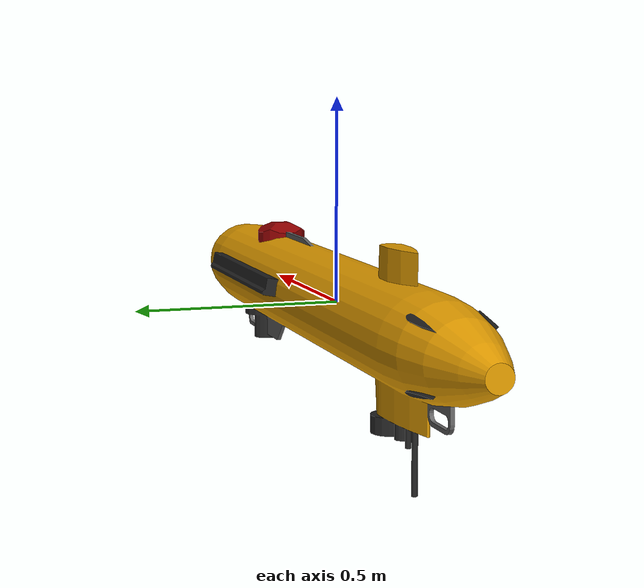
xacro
<?xml version="1.0"?>
<robot name="eca_a9_visual" xmlns:xacro="http://ros.org/wiki/xacro">

  <xacro:property name="fls_mount_angle_deg" value="20"/>

  <!-- Mesh properties -->
  <xacro:property name="visual_mesh"    value="package://eca_a9_description/mesh/eca_a9.dae"/>
  <!-- Use STL for collision if available; fallback to DAE by changing below -->
  <xacro:property name="collision_mesh" value="package://eca_a9_description/mesh/eca_a9.stl"/>

  <link name="base_link">
    <visual>
      <origin xyz="0 0 0" rpy="3.14159 0 0"/>
      <geometry>
        <mesh filename="${visual_mesh}" scale="1 1 1"/>
      </geometry>
    </visual>
    <collision>
      <origin xyz="0 0 0" rpy="0 0 0"/>
      <geometry>
        <mesh filename="${collision_mesh}" scale="1 1 1"/>
      </geometry>
    </collision>
    <inertial>
      <origin xyz="0 0 0" rpy="0 0 0"/>
      <mass value="1.0"/>
      <inertia ixx="1e-3" ixy="0" ixz="0" iyy="1e-3" iyz="0" izz="1e-3"/>
    </inertial>
  </link>

  <!-- Forward-Looking Sonar (FLS) frame -->
  <joint name="base_to_sonar" type="fixed">
    <parent link="base_link"/>
    <child link="sonar"/>
    <!-- Mount at bow (0.7m forward), angled down by fls_mount_angle_deg.
         Negative pitch tilts the sonar's forward (+X) axis downward. -->
    <origin xyz="0.7 0 0" rpy="0 ${radians(-fls_mount_angle_deg)} 0"/>
  </joint>

  <link name="sonar">
    <visual>
      <origin xyz="0 0 0" rpy="0 0 0"/>
      <geometry>
        <box size="0.05 0.05 0.05"/>
      </geometry>
      <material name="sonar_blue">
        <color rgba="0.0 0.5 1.0 0.8"/>
      </material>
    </visual>
  </link>

  <!-- Sonar optical frame (for raycasting coordinate system) -->
  <!-- Converts to optical convention: +X right, +Y down, +Z forward -->
  <joint name="sonar_to_optical" type="fixed">
    <parent link="sonar"/>
    <child link="sonar_optical"/>
    <origin xyz="0 0 0" rpy="-1.5708 0 -1.5708"/>
  </joint>

  <link name="sonar_optical"/>

</robot>
